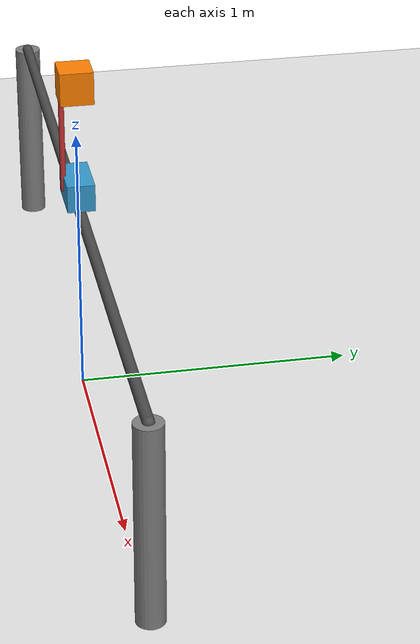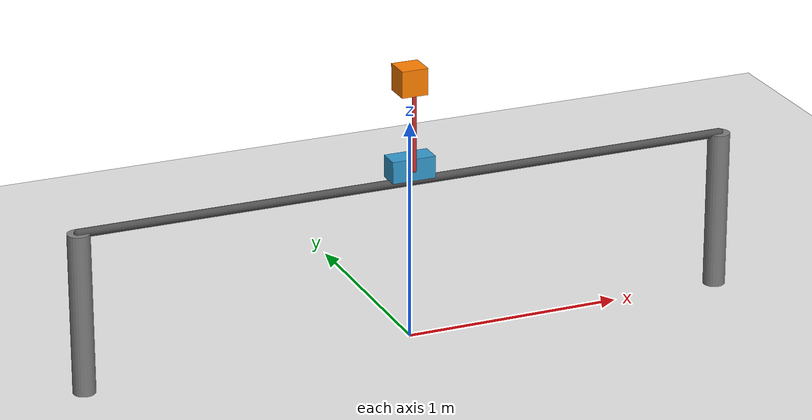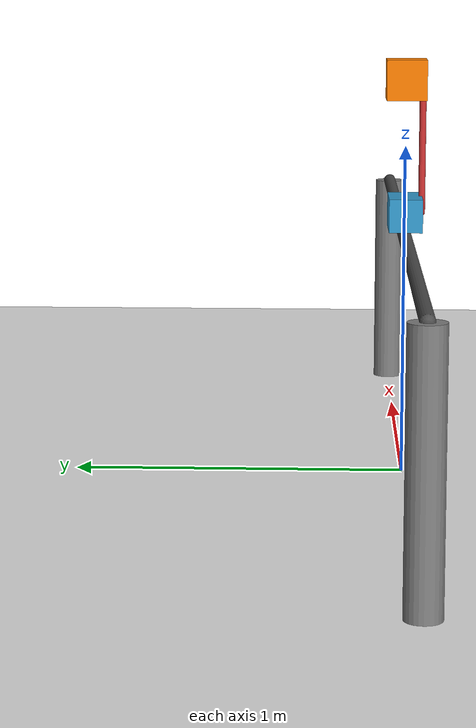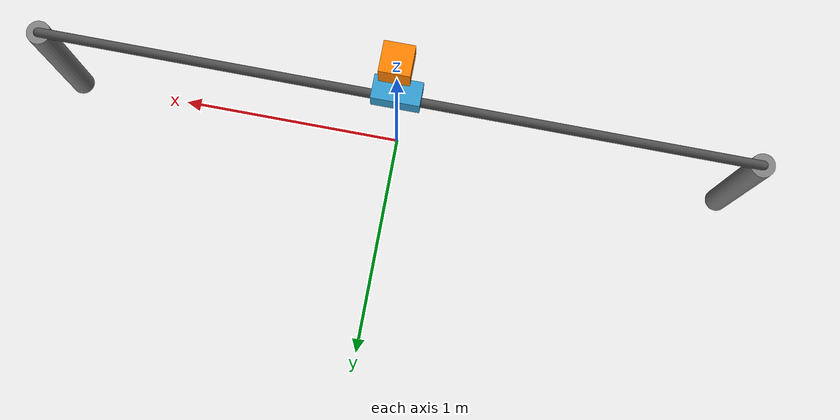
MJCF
<mujoco model="cartpole">

  <option timestep="0.01" integrator="RK4"/>

  <!-- 1. 调整视觉参数，增加环境光（让阴影不那么黑） -->
  <visual>
    <headlight ambient="0.4 0.4 0.4" diffuse="0.8 0.8 0.8" specular="0.1 0.1 0.1"/>
  </visual>

  <worldbody>
    <!-- 2. 主光源：位置调高，增加平行光感 -->
    <light name="top_light" pos="0 0 4" dir="0 0 -1" diffuse="0.9 0.9 0.9" castshadow="true"/>
    <!-- 3. 辅助光源：从侧前方照射，补全阴影细节 -->
    <light name="side_light" pos="2 2 2" dir="-1 -1 -1" diffuse="0.3 0.3 0.3" castshadow="false"/>

    <geom name="floor" type="plane" size="5 5 0.01" rgba="0.9 0.9 0.9 1"/>

    <!-- ======= 轨道系统 ======= -->
    <!-- 轨道主体：位于 z=0.8，长度覆盖 -3 到 3 -->
    <geom name="rail" type="capsule" fromto="-1.5 0 0.73 1.5 0 0.73" size="0.02" rgba="0.3 0.3 0.3 1"/>
    <!-- 左侧支柱 -->
    <geom name="left_support" type="cylinder" fromto="-1.5 0 0 -1.5 0 0.73" size="0.05" rgba="0.5 0.5 0.5 1"/>
    <!-- 右侧支柱 -->
    <geom name="right_support" type="cylinder" fromto="1.5 0 0 1.5 0 0.73" size="0.05" rgba="0.5 0.5 0.5 1"/>

    <!-- =============障碍物=============== -->
    <body name="obstacle" pos="0 0 1.20">
      <joint name="obs_slider" type="slide" axis="1 0 0" range="-1.0 1.0" damping="0.5"/>
      <geom name="obs_geom" type="box" size="0.06 0.06 0.06" rgba="1 0.5 0 1" mass="1.0"/>
    </body>

    <!--============小车=========-->
    <body name="cart" pos="0 0 0.8">
      <inertial pos="0 0 0" mass="0.75" diaginertia="1e-8 1e-8 1e-8"/> <!-- 保持惯量恒定 -->
      <joint name="slider" type="slide" damping="5.4" range="-1.0 1.0" axis="1 0 0" />
      <geom name="cart_geom" type="box" size="0.1 0.05 0.05" rgba="0.2 0.6 0.8 1"/>

      <!--===========摆杆=================-->
      <body name="pole" pos="0 -0.05 0">
        <!-- pos 是质心相对于 body 原点的位置 -->
        <inertial pos="0 0 0.1778" mass="0.127" diaginertia="1e-8 1.2e-03 1.2e-03"/>
        <joint name="hinge" type="hinge" damping="0.0024" axis="0 1 0" />
        <geom name="pole_geom" type="capsule" size="0.01 0.3" fromto="0 0 0 0 0 0.3365" rgba="0.8 0.2 0.2 1"/>
      </body>
    </body>
  </worldbody>

  <!-- 如果为了更好的在Mujoco中使用Reset进行完整的视觉感受，则可以添加关键帧定义-->
  <keyframe>
    <key name="cartpole_reset" qpos="-0.5 0 0" qvel="0 0 0"/>

  </keyframe>

  <actuator>
    <motor name="motor_cart" joint="slider" gear="1"/>
    <motor name="motor_obs" joint="obs_slider" gear="1"/>
  </actuator>

</mujoco>
